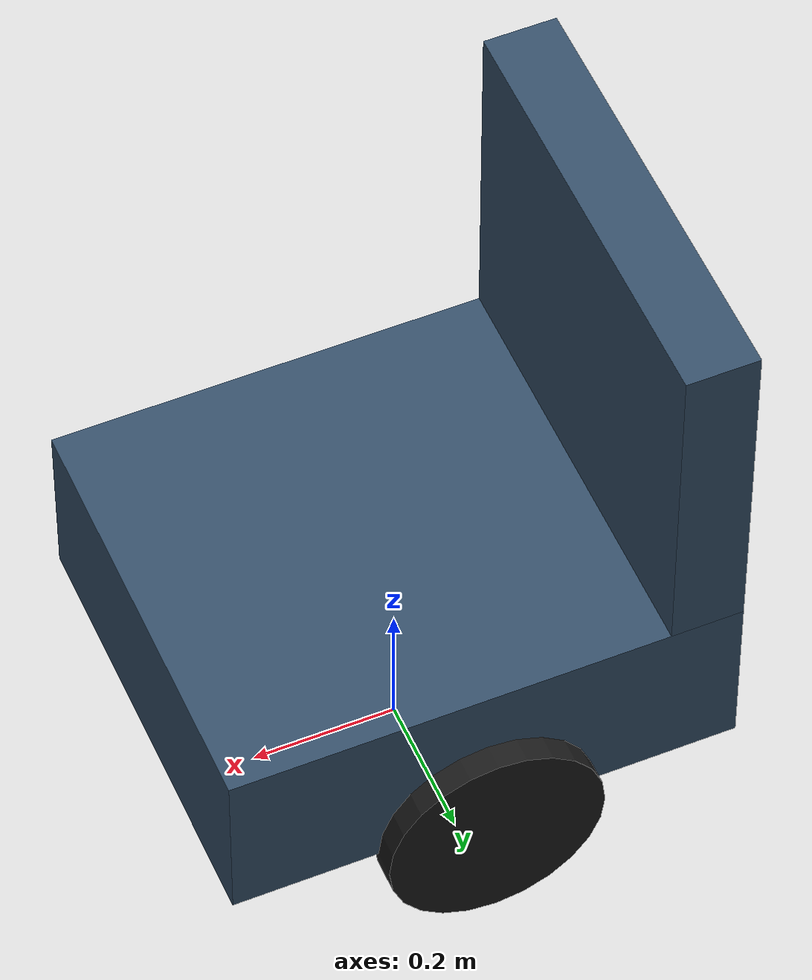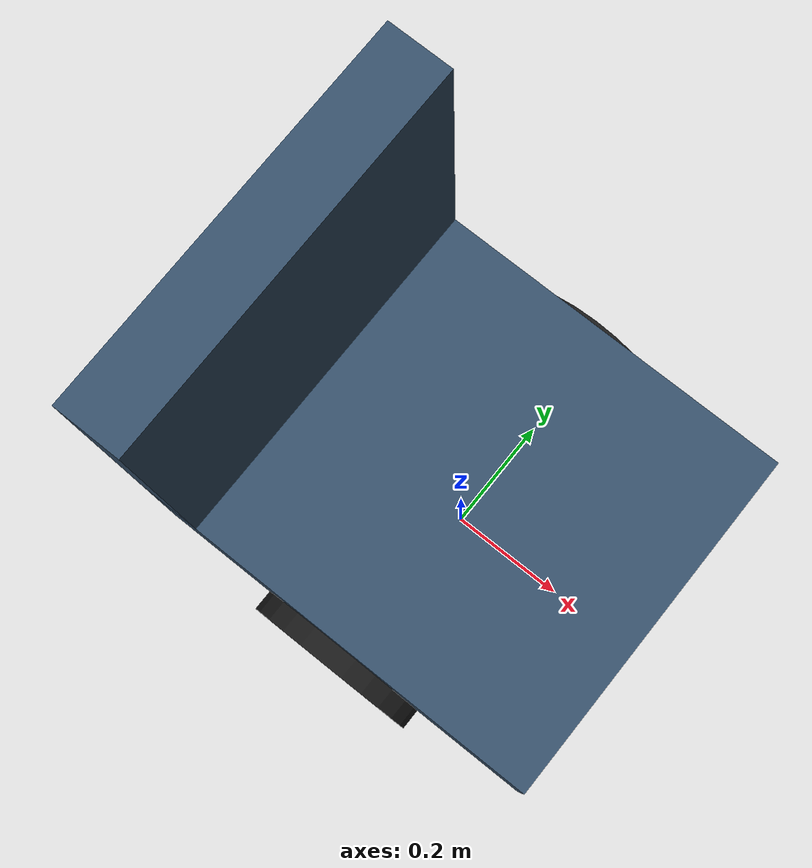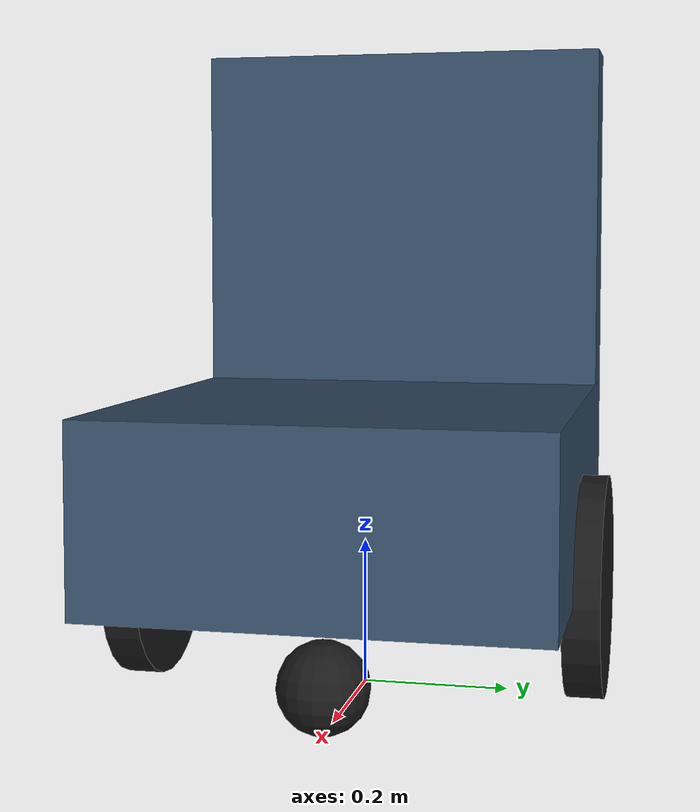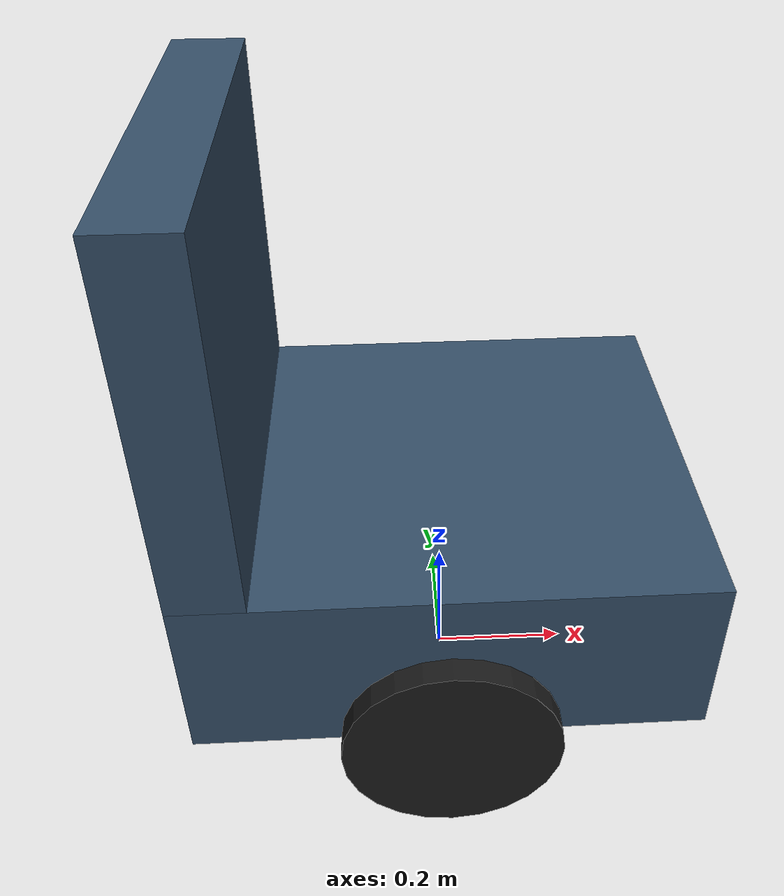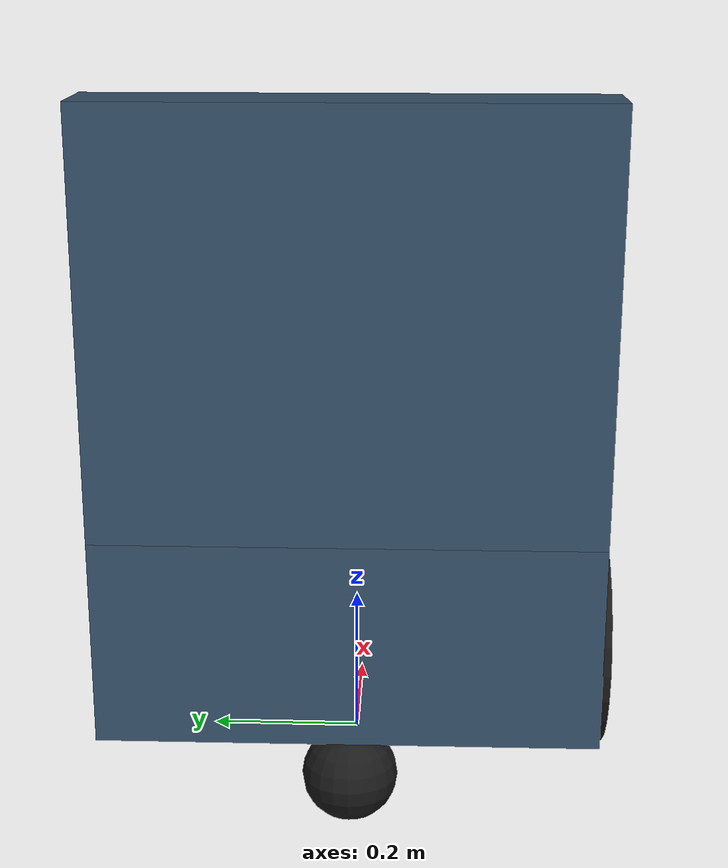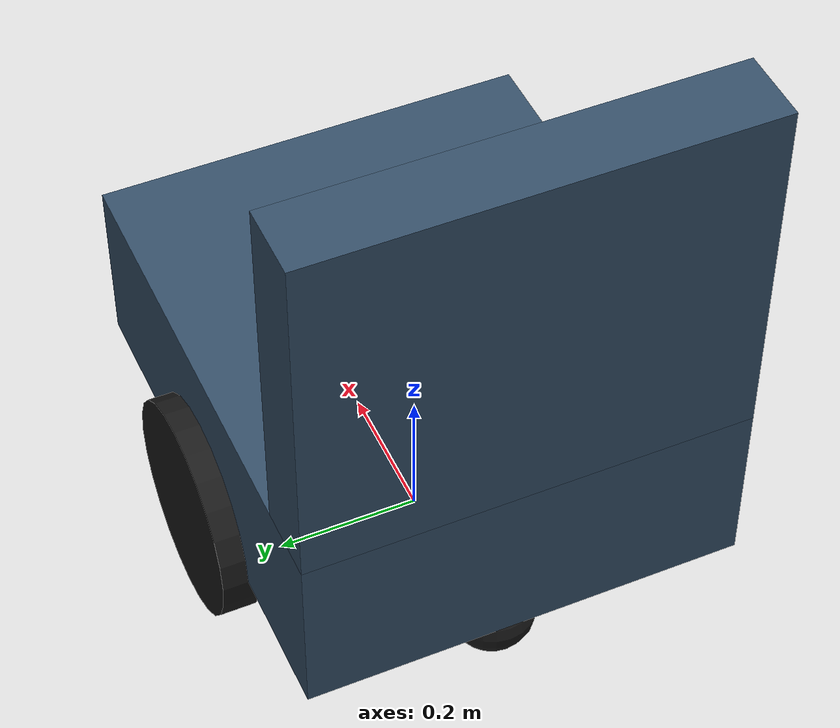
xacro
<?xml version="1.0"?>
<robot name="wheelchair" xmlns:xacro="http://www.ros.org/wiki/xacro">

  <xacro:property name="base_x" value="0.7"/>
  <xacro:property name="base_y" value="0.6"/>
  <xacro:property name="base_z" value="0.25"/>
  <xacro:property name="wheel_r" value="0.15"/>
  <xacro:property name="wheel_w" value="0.05"/>
  <xacro:property name="sep" value="0.62"/>
  <xacro:arg name="wheel_mu" default="1.0"/>
  <!-- Explicit, symmetric velocity-loop authority.  The probe may vary only
       effort; velocity remains bounded above the 1.333 rad/s test target. -->
  <xacro:arg name="wheel_effort_limit" default="10.0"/>
  <xacro:arg name="wheel_velocity_limit" default="4.0"/>
  <!-- Disabled by default: the probe can enable an explicit ODE friction
       direction without changing the production isotropic-contact baseline. -->
  <xacro:arg name="wheel_fdir1_enabled" default="false"/>
  <!-- ODE slip2 is the direction orthogonal to fdir1.  With the explicit
       rolling fdir1 below, this is the lateral-only probe parameter. -->
  <xacro:arg name="wheel_lateral_slip_enabled" default="false"/>
  <xacro:arg name="wheel_lateral_slip" default="0.0"/>
  <!-- Disabled by default: this is the next isolated ODE contact-stiffness
       experiment after fdir1 and lateral slip have been ruled out. -->
  <xacro:arg name="wheel_contact_stiffness_enabled" default="false"/>
  <xacro:arg name="wheel_contact_kp" default="10000000.0"/>
  <xacro:arg name="wheel_contact_kd" default="1.0"/>
  <xacro:arg name="wheel_contact_min_depth_enabled" default="false"/>
  <xacro:arg name="wheel_contact_min_depth" default="0.001"/>
  <xacro:arg name="wheel_contact_max_vel_enabled" default="false"/>
  <xacro:arg name="wheel_contact_max_vel" default="0.1"/>

  <material name="chair"><color rgba="0.2 0.3 0.4 1"/></material>
  <material name="dark"><color rgba="0.1 0.1 0.1 1"/></material>

  <link name="base_footprint"/>

  <link name="base_link">
    <inertial>
      <!-- Minimal standard diff-drive execution body.  Dimensions remain the
           wheelchair footprint; only its physical carrier is simplified. -->
      <mass value="12.0"/>
      <inertia ixx="0.45" ixy="0" ixz="0" iyy="0.56" iyz="0" izz="0.73"/>
    </inertial>
    <visual>
      <geometry><box size="${base_x} ${base_y} ${base_z}"/></geometry>
      <material name="chair"/>
    </visual>
    <collision>
      <geometry><box size="${base_x} ${base_y} ${base_z}"/></geometry>
    </collision>
  </link>

  <joint name="base_joint" type="fixed">
    <parent link="base_footprint"/>
    <child link="base_link"/>
    <origin xyz="0 0 ${wheel_r + base_z/2}"/>
  </joint>

  <!-- seat back (so the occupant volume matters for social footprint) -->
  <link name="seat_back">
    <inertial><mass value="5"/>
      <inertia ixx="0.2" ixy="0" ixz="0" iyy="0.2" iyz="0" izz="0.2"/></inertial>
    <visual><geometry><box size="0.1 ${base_y} 0.5"/></geometry>
      <material name="chair"/></visual>
    <!-- Visual task geometry only: the execution chassis collision is the
         base box and drive/support wheels below. -->
  </link>
  <joint name="seat_joint" type="fixed">
    <parent link="base_link"/>
    <child link="seat_back"/>
    <origin xyz="${-base_x/2 + 0.05} 0 ${base_z/2 + 0.25}"/>
  </joint>

  <xacro:macro name="wheel" params="name y">
    <link name="${name}">
      <inertial><mass value="1.5"/>
        <!-- Cylinder axis is link y after the visual/collision rotation. -->
        <inertia ixx="0.00875" ixy="0" ixz="0" iyy="0.03375" iyz="0" izz="0.00875"/></inertial>
      <visual>
        <origin rpy="1.5708 0 0"/>
        <geometry><cylinder radius="${wheel_r}" length="${wheel_w}"/></geometry>
        <material name="dark"/>
      </visual>
      <collision>
        <origin rpy="1.5708 0 0"/>
        <geometry><cylinder radius="${wheel_r}" length="${wheel_w}"/></geometry>
      </collision>
    </link>
    <joint name="${name}_joint" type="continuous">
      <parent link="base_link"/>
      <child link="${name}"/>
      <origin xyz="0 ${y} ${-base_z/2}"/>
      <axis xyz="0 1 0"/>
      <limit effort="$(arg wheel_effort_limit)" velocity="$(arg wheel_velocity_limit)"/>
    </joint>
    <transmission name="${name}_trans">
      <type>transmission_interface/SimpleTransmission</type>
      <joint name="${name}_joint"><hardwareInterface>hardware_interface/VelocityJointInterface</hardwareInterface></joint>
      <actuator name="${name}_motor"><mechanicalReduction>1</mechanicalReduction></actuator>
    </transmission>
  </xacro:macro>

  <xacro:wheel name="left_wheel" y="${sep/2}"/>
  <xacro:wheel name="right_wheel" y="${-sep/2}"/>

  <!-- Symmetric, friction-free support balls keep the simplified carrier
       level without adding lateral rolling constraints. -->
  <link name="caster">
    <inertial><mass value="0.5"/>
      <inertia ixx="0.001" ixy="0" ixz="0" iyy="0.001" iyz="0" izz="0.001"/></inertial>
    <visual><geometry><sphere radius="0.06"/></geometry><material name="dark"/></visual>
    <collision><geometry><sphere radius="0.06"/></geometry>
      <surface><friction><ode><mu>0.0</mu><mu2>0.0</mu2></ode></friction></surface></collision>
  </link>
  <joint name="caster_joint" type="fixed">
    <parent link="base_link"/>
    <child link="caster"/>
    <origin xyz="${base_x/2 - 0.1} 0 ${-base_z/2 - wheel_r + 0.06}"/>
  </joint>

  <link name="rear_caster">
    <inertial><mass value="0.5"/>
      <inertia ixx="0.001" ixy="0" ixz="0" iyy="0.001" iyz="0" izz="0.001"/></inertial>
    <visual><geometry><sphere radius="0.06"/></geometry><material name="dark"/></visual>
    <collision><geometry><sphere radius="0.06"/></geometry>
      <surface><friction><ode><mu>0.0</mu><mu2>0.0</mu2></ode></friction></surface></collision>
  </link>
  <joint name="rear_caster_joint" type="fixed">
    <parent link="base_link"/>
    <child link="rear_caster"/>
    <origin xyz="${-base_x/2 + 0.1} 0 ${-base_z/2 - wheel_r + 0.06}"/>
  </joint>

  <gazebo reference="caster"><mu1>0.0</mu1><mu2>0.0</mu2></gazebo>
  <gazebo reference="rear_caster"><mu1>0.0</mu1><mu2>0.0</mu2></gazebo>
  <gazebo reference="left_wheel">
    <mu1>$(arg wheel_mu)</mu1><mu2>$(arg wheel_mu)</mu2>
    <xacro:if value="$(arg wheel_fdir1_enabled)">
      <fdir1>1 0 0</fdir1>
    </xacro:if>
    <xacro:if value="$(arg wheel_lateral_slip_enabled)">
      <slip2>$(arg wheel_lateral_slip)</slip2>
    </xacro:if>
    <xacro:if value="$(arg wheel_contact_stiffness_enabled)">
      <kp>$(arg wheel_contact_kp)</kp><kd>$(arg wheel_contact_kd)</kd>
    </xacro:if>
    <xacro:if value="$(arg wheel_contact_min_depth_enabled)">
      <minDepth>$(arg wheel_contact_min_depth)</minDepth>
    </xacro:if>
    <xacro:if value="$(arg wheel_contact_max_vel_enabled)">
      <maxVel>$(arg wheel_contact_max_vel)</maxVel>
    </xacro:if>
    <sensor name="left_wheel_contact_sensor" type="contact">
      <always_on>true</always_on><update_rate>100</update_rate>
      <contact><collision>left_wheel_collision</collision></contact>
      <plugin name="left_wheel_contact_plugin" filename="libgazebo_ros_bumper.so">
        <bumperTopicName>/wheelchair/left_wheel/contact</bumperTopicName>
        <frameName>left_wheel</frameName>
      </plugin>
    </sensor>
  </gazebo>
  <gazebo reference="right_wheel">
    <mu1>$(arg wheel_mu)</mu1><mu2>$(arg wheel_mu)</mu2>
    <xacro:if value="$(arg wheel_fdir1_enabled)">
      <fdir1>1 0 0</fdir1>
    </xacro:if>
    <xacro:if value="$(arg wheel_lateral_slip_enabled)">
      <slip2>$(arg wheel_lateral_slip)</slip2>
    </xacro:if>
    <xacro:if value="$(arg wheel_contact_stiffness_enabled)">
      <kp>$(arg wheel_contact_kp)</kp><kd>$(arg wheel_contact_kd)</kd>
    </xacro:if>
    <xacro:if value="$(arg wheel_contact_min_depth_enabled)">
      <minDepth>$(arg wheel_contact_min_depth)</minDepth>
    </xacro:if>
    <xacro:if value="$(arg wheel_contact_max_vel_enabled)">
      <maxVel>$(arg wheel_contact_max_vel)</maxVel>
    </xacro:if>
    <sensor name="right_wheel_contact_sensor" type="contact">
      <always_on>true</always_on><update_rate>100</update_rate>
      <contact><collision>right_wheel_collision</collision></contact>
      <plugin name="right_wheel_contact_plugin" filename="libgazebo_ros_bumper.so">
        <bumperTopicName>/wheelchair/right_wheel/contact</bumperTopicName>
        <frameName>right_wheel</frameName>
      </plugin>
    </sensor>
  </gazebo>

  <gazebo>
    <plugin name="gazebo_ros_control" filename="libgazebo_ros_control.so">
      <robotNamespace>/wheelchair</robotNamespace>
    </plugin>
  </gazebo>
</robot>
